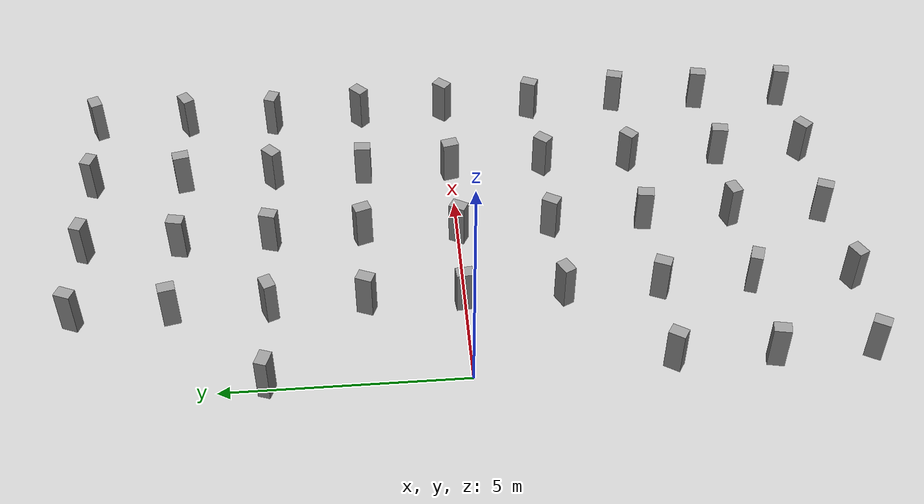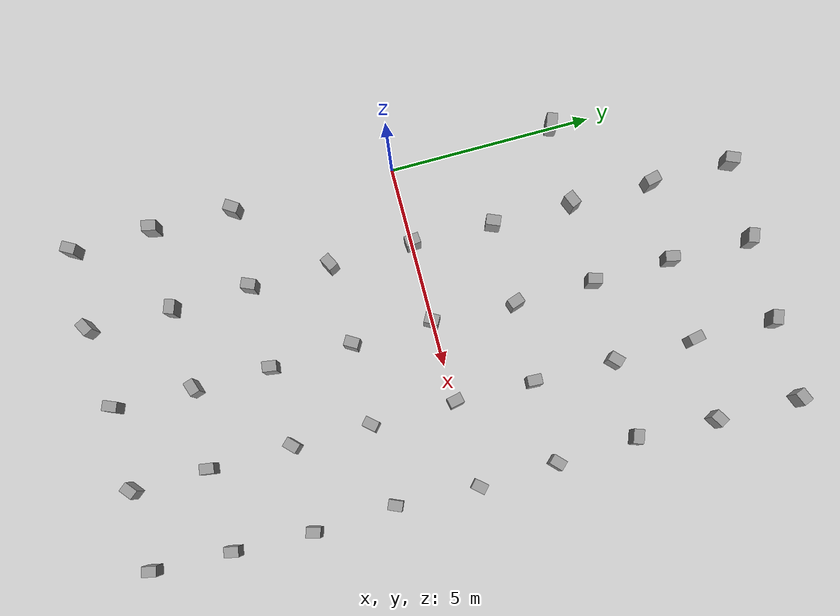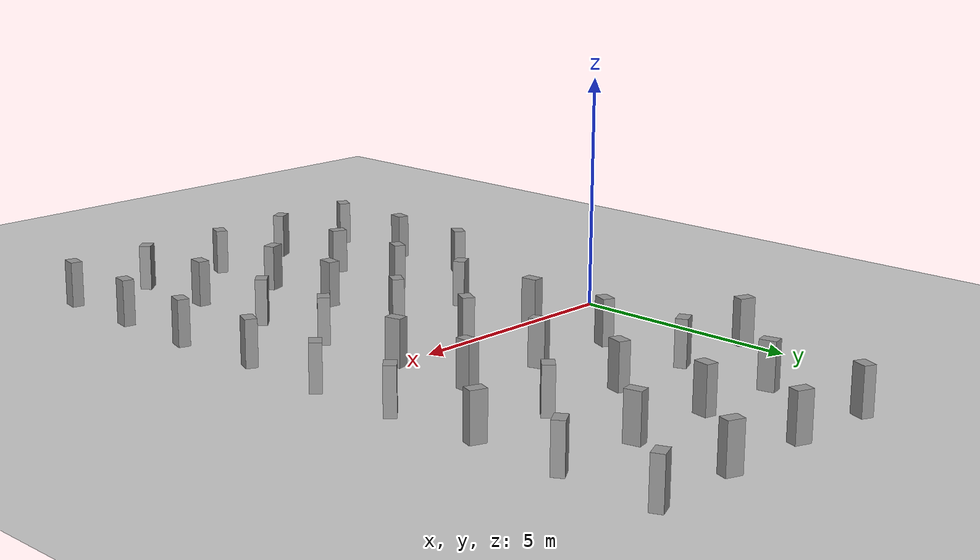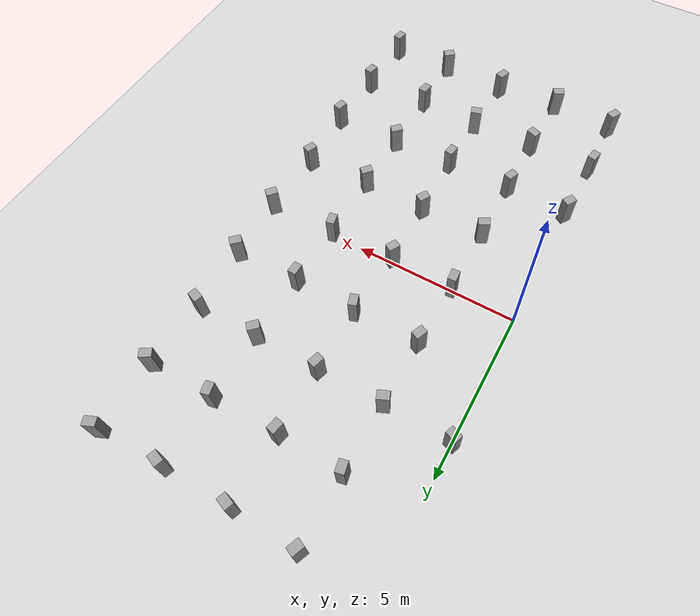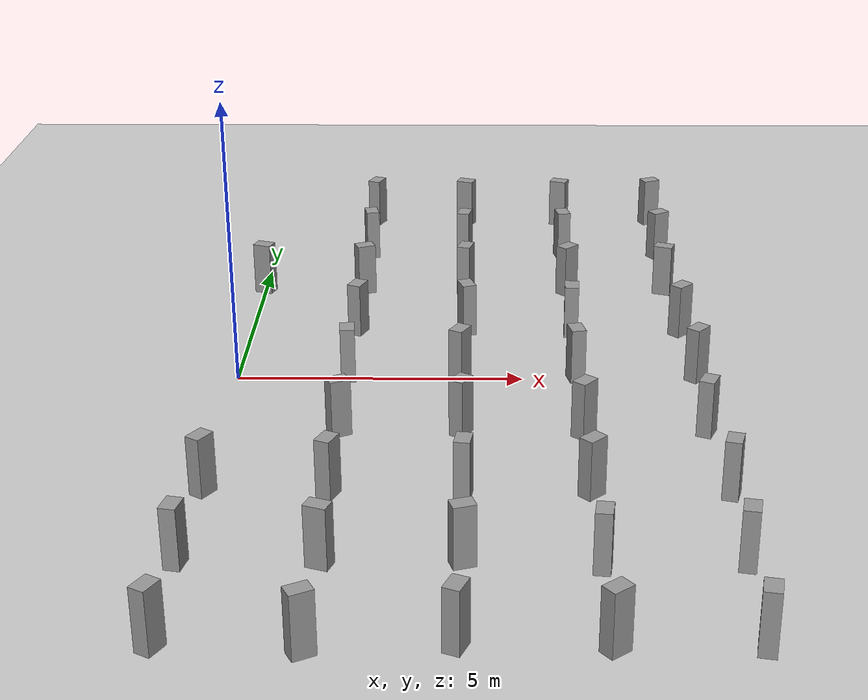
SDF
<sdf version="1.6">
 <world name="default">
  <model name="ground_plane">
   <static>1</static>
   <link name="link">
    <collision name="collision">
     <geometry><plane><normal>0 0 1</normal><size>100 100</size></plane></geometry>
     <surface><friction><ode><mu>100</mu><mu2>50</mu2></ode></friction></surface>
    </collision>
    <visual name="visual">
     <cast_shadows>0</cast_shadows>
     <geometry><plane><normal>0 0 1</normal><size>100 100</size></plane></geometry>
     <material>
      <script><uri>file://media/materials/scripts/gazebo.material</uri><name>Gazebo/Grey</name></script>
     </material>
    </visual>
   </link>
  </model>
  <model name="unit_box_0_clone_2">
   <pose>1.9498 -2.04742 0.499999 1e-06 3e-06 0.477381</pose>
   <link name="link">
    <inertial>
     <mass>1</mass>
     <inertia>
      <ixx>0.166667</ixx>
      <ixy>0</ixy>
      <ixz>0</ixz>
      <iyy>0.166667</iyy>
      <iyz>0</iyz>
      <izz>0.166667</izz>
     </inertia>
    </inertial>
    <collision name="collision"><geometry><box><size>0.350929 0.254556 1</size></box></geometry></collision>
    <visual name="visual">
     <geometry><box><size>0.350929 0.254556 1</size></box></geometry>
     <material>
      <script><name>Gazebo/Grey</name><uri>file://media/materials/scripts/gazebo.material</uri></script>
     </material>
    </visual>
   </link>
  </model>
  <model name="unit_box_0_clone_3">
   <pose>1.94354 0.021053 0.5 2e-06 1e-06 -1.48018</pose>
   <link name="link">
    <inertial>
     <mass>1</mass>
     <inertia>
      <ixx>0.166667</ixx>
      <ixy>0</ixy>
      <ixz>0</ixz>
      <iyy>0.166667</iyy>
      <iyz>0</iyz>
      <izz>0.166667</izz>
     </inertia>
    </inertial>
    <collision name="collision"><geometry><box><size>0.350929 0.254556 1</size></box></geometry></collision>
    <visual name="visual">
     <geometry><box><size>0.350929 0.254556 1</size></box></geometry>
     <material>
      <script><name>Gazebo/Grey</name><uri>file://media/materials/scripts/gazebo.material</uri></script>
     </material>
    </visual>
   </link>
  </model>
  <model name="unit_box_0_clone_4">
   <pose>1.98703 2.02419 0.5 -2e-06 1e-06 1.17595</pose>
   <link name="link">
    <inertial>
     <mass>1</mass>
     <inertia>
      <ixx>0.166667</ixx>
      <ixy>0</ixy>
      <ixz>0</ixz>
      <iyy>0.166667</iyy>
      <iyz>0</iyz>
      <izz>0.166667</izz>
     </inertia>
    </inertial>
    <collision name="collision"><geometry><box><size>0.350929 0.254556 1</size></box></geometry></collision>
    <visual name="visual">
     <geometry><box><size>0.350929 0.254556 1</size></box></geometry>
     <material>
      <script><name>Gazebo/Grey</name><uri>file://media/materials/scripts/gazebo.material</uri></script>
     </material>
    </visual>
   </link>
  </model>
  <model name="unit_box_0_clone_0_clone_0">
   <pose>3.90799 -0.017554 0.5 1e-06 -2e-06 1.06266</pose>
   <link name="link">
    <inertial>
     <mass>1</mass>
     <inertia>
      <ixx>0.166667</ixx>
      <ixy>0</ixy>
      <ixz>0</ixz>
      <iyy>0.166667</iyy>
      <iyz>0</iyz>
      <izz>0.166667</izz>
     </inertia>
    </inertial>
    <collision name="collision"><geometry><box><size>0.350929 0.254556 1</size></box></geometry></collision>
    <visual name="visual">
     <geometry><box><size>0.350929 0.254556 1</size></box></geometry>
     <material>
      <script><name>Gazebo/Grey</name><uri>file://media/materials/scripts/gazebo.material</uri></script>
     </material>
    </visual>
   </link>
  </model>
  <model name="unit_box_0_clone_0_clone_1">
   <pose>3.9473 -2.00835 0.499999 2e-06 -2e-06 1.0337</pose>
   <link name="link">
    <inertial>
     <mass>1</mass>
     <inertia>
      <ixx>0.166667</ixx>
      <ixy>0</ixy>
      <ixz>0</ixz>
      <iyy>0.166667</iyy>
      <iyz>0</iyz>
      <izz>0.166667</izz>
     </inertia>
    </inertial>
    <collision name="collision"><geometry><box><size>0.350929 0.254556 1</size></box></geometry></collision>
    <visual name="visual">
     <geometry><box><size>0.350929 0.254556 1</size></box></geometry>
     <material>
      <script><name>Gazebo/Grey</name><uri>file://media/materials/scripts/gazebo.material</uri></script>
     </material>
    </visual>
   </link>
  </model>
  <model name="unit_box_0_clone_0_clone_clone_1">
   <pose>4.00978 2.0365 0.499999 -2e-06 -2e-06 -1.24428</pose>
   <link name="link">
    <inertial>
     <mass>1</mass>
     <inertia>
      <ixx>0.166667</ixx>
      <ixy>0</ixy>
      <ixz>0</ixz>
      <iyy>0.166667</iyy>
      <iyz>0</iyz>
      <izz>0.166667</izz>
     </inertia>
    </inertial>
    <collision name="collision"><geometry><box><size>0.350929 0.254556 1</size></box></geometry></collision>
    <visual name="visual">
     <geometry><box><size>0.350929 0.254556 1</size></box></geometry>
     <material>
      <script><name>Gazebo/Grey</name><uri>file://media/materials/scripts/gazebo.material</uri></script>
     </material>
    </visual>
   </link>
  </model>
  <model name="unit_box_0_clone_0_clone_clone_4">
   <pose>0.002444 4.02781 0.5 2e-06 -1e-06 -0.343846</pose>
   <link name="link">
    <inertial>
     <mass>1</mass>
     <inertia>
      <ixx>0.166667</ixx>
      <ixy>0</ixy>
      <ixz>0</ixz>
      <iyy>0.166667</iyy>
      <iyz>0</iyz>
      <izz>0.166667</izz>
     </inertia>
    </inertial>
    <collision name="collision"><geometry><box><size>0.350929 0.254556 1</size></box></geometry></collision>
    <visual name="visual">
     <geometry><box><size>0.350929 0.254556 1</size></box></geometry>
     <material>
      <script><name>Gazebo/Grey</name><uri>file://media/materials/scripts/gazebo.material</uri></script>
     </material>
    </visual>
   </link>
  </model>
  <model name="unit_box_0_clone_0_clone_clone_5">
   <pose>1.98831 3.99609 0.499999 -2e-06 -3e-06 0.401859</pose>
   <link name="link">
    <inertial>
     <mass>1</mass>
     <inertia>
      <ixx>0.166667</ixx>
      <ixy>0</ixy>
      <ixz>0</ixz>
      <iyy>0.166667</iyy>
      <iyz>0</iyz>
      <izz>0.166667</izz>
     </inertia>
    </inertial>
    <collision name="collision"><geometry><box><size>0.350929 0.254556 1</size></box></geometry></collision>
    <visual name="visual">
     <geometry><box><size>0.350929 0.254556 1</size></box></geometry>
     <material>
      <script><name>Gazebo/Grey</name><uri>file://media/materials/scripts/gazebo.material</uri></script>
     </material>
    </visual>
   </link>
  </model>
  <model name="unit_box_0_clone_0_clone_clone_6">
   <pose>3.97808 4.00798 0.5 1e-06 -1e-06 1.28883</pose>
   <link name="link">
    <inertial>
     <mass>1</mass>
     <inertia>
      <ixx>0.166667</ixx>
      <ixy>0</ixy>
      <ixz>0</ixz>
      <iyy>0.166667</iyy>
      <iyz>0</iyz>
      <izz>0.166667</izz>
     </inertia>
    </inertial>
    <collision name="collision"><geometry><box><size>0.350929 0.254556 1</size></box></geometry></collision>
    <visual name="visual">
     <geometry><box><size>0.350929 0.254556 1</size></box></geometry>
     <material>
      <script><name>Gazebo/Grey</name><uri>file://media/materials/scripts/gazebo.material</uri></script>
     </material>
    </visual>
   </link>
  </model>
  <model name="unit_box_0_clone_0_clone_clone_9">
   <pose>0.032902 -3.98118 0.499999 2e-06 -2e-06 0.998488</pose>
   <link name="link">
    <inertial>
     <mass>1</mass>
     <inertia>
      <ixx>0.166667</ixx>
      <ixy>0</ixy>
      <ixz>0</ixz>
      <iyy>0.166667</iyy>
      <iyz>0</iyz>
      <izz>0.166667</izz>
     </inertia>
    </inertial>
    <collision name="collision"><geometry><box><size>0.350929 0.254556 1</size></box></geometry></collision>
    <visual name="visual">
     <geometry><box><size>0.350929 0.254556 1</size></box></geometry>
     <material>
      <script><name>Gazebo/Grey</name><uri>file://media/materials/scripts/gazebo.material</uri></script>
     </material>
    </visual>
   </link>
  </model>
  <model name="unit_box_0_clone_0_clone_clone_10">
   <pose>1.95385 -4.04506 0.499999 -3e-06 2e-06 1.16014</pose>
   <link name="link">
    <inertial>
     <mass>1</mass>
     <inertia>
      <ixx>0.166667</ixx>
      <ixy>0</ixy>
      <ixz>0</ixz>
      <iyy>0.166667</iyy>
      <iyz>0</iyz>
      <izz>0.166667</izz>
     </inertia>
    </inertial>
    <collision name="collision"><geometry><box><size>0.350929 0.254556 1</size></box></geometry></collision>
    <visual name="visual">
     <geometry><box><size>0.350929 0.254556 1</size></box></geometry>
     <material>
      <script><name>Gazebo/Grey</name><uri>file://media/materials/scripts/gazebo.material</uri></script>
     </material>
    </visual>
   </link>
  </model>
  <model name="unit_box_0_clone_0_clone_clone_11">
   <pose>4.00189 -4.04974 0.5 -1e-06 1e-06 1.42933</pose>
   <link name="link">
    <inertial>
     <mass>1</mass>
     <inertia>
      <ixx>0.166667</ixx>
      <ixy>0</ixy>
      <ixz>0</ixz>
      <iyy>0.166667</iyy>
      <iyz>0</iyz>
      <izz>0.166667</izz>
     </inertia>
    </inertial>
    <collision name="collision"><geometry><box><size>0.350929 0.254556 1</size></box></geometry></collision>
    <visual name="visual">
     <geometry><box><size>0.350929 0.254556 1</size></box></geometry>
     <material>
      <script><name>Gazebo/Grey</name><uri>file://media/materials/scripts/gazebo.material</uri></script>
     </material>
    </visual>
   </link>
  </model>
  <model name="unit_box_0_clone_0_clone_clone_14">
   <pose>-0.025516 -6.0059 0.499999 2e-06 -2e-06 1.37197</pose>
   <link name="link">
    <inertial>
     <mass>1</mass>
     <inertia>
      <ixx>0.166667</ixx>
      <ixy>0</ixy>
      <ixz>0</ixz>
      <iyy>0.166667</iyy>
      <iyz>0</iyz>
      <izz>0.166667</izz>
     </inertia>
    </inertial>
    <collision name="collision"><geometry><box><size>0.350929 0.254556 1</size></box></geometry></collision>
    <visual name="visual">
     <geometry><box><size>0.350929 0.254556 1</size></box></geometry>
     <material>
      <script><name>Gazebo/Grey</name><uri>file://media/materials/scripts/gazebo.material</uri></script>
     </material>
    </visual>
   </link>
  </model>
  <model name="unit_box_0_clone_0_clone_clone_15">
   <pose>2 -6 0.499999 -3e-06 2e-06 -0.343953</pose>
   <link name="link">
    <inertial>
     <mass>1</mass>
     <inertia>
      <ixx>0.166667</ixx>
      <ixy>0</ixy>
      <ixz>0</ixz>
      <iyy>0.166667</iyy>
      <iyz>0</iyz>
      <izz>0.166667</izz>
     </inertia>
    </inertial>
    <collision name="collision"><geometry><box><size>0.350929 0.254556 1</size></box></geometry></collision>
    <visual name="visual">
     <geometry><box><size>0.350929 0.254556 1</size></box></geometry>
     <material>
      <script><name>Gazebo/Grey</name><uri>file://media/materials/scripts/gazebo.material</uri></script>
     </material>
    </visual>
   </link>
  </model>
  <model name="unit_box_0_clone_0_clone_clone_16">
   <pose>4.00946 -5.96164 0.499999 -2e-06 -3e-06 0.309428</pose>
   <link name="link">
    <inertial>
     <mass>1</mass>
     <inertia>
      <ixx>0.166667</ixx>
      <ixy>0</ixy>
      <ixz>0</ixz>
      <iyy>0.166667</iyy>
      <iyz>0</iyz>
      <izz>0.166667</izz>
     </inertia>
    </inertial>
    <collision name="collision"><geometry><box><size>0.350929 0.254556 1</size></box></geometry></collision>
    <visual name="visual">
     <geometry><box><size>0.350929 0.254556 1</size></box></geometry>
     <material>
      <script><name>Gazebo/Grey</name><uri>file://media/materials/scripts/gazebo.material</uri></script>
     </material>
    </visual>
   </link>
  </model>
  <model name="unit_box_0_clone_0_clone_clone_11_clone">
   <pose>5.97269 -6.08417 0.499999 -2e-06 3e-06 1.42926</pose>
   <link name="link">
    <inertial>
     <mass>1</mass>
     <inertia>
      <ixx>0.166667</ixx>
      <ixy>0</ixy>
      <ixz>0</ixz>
      <iyy>0.166667</iyy>
      <iyz>0</iyz>
      <izz>0.166667</izz>
     </inertia>
    </inertial>
    <collision name="collision"><geometry><box><size>0.350929 0.254556 1</size></box></geometry></collision>
    <visual name="visual">
     <geometry><box><size>0.350929 0.254556 1</size></box></geometry>
     <material>
      <script><name>Gazebo/Grey</name><uri>file://media/materials/scripts/gazebo.material</uri></script>
     </material>
    </visual>
   </link>
  </model>
  <model name="unit_box_0_clone_6">
   <pose>5.9535 -4.01117 0.5 2e-06 -1e-06 0.772629</pose>
   <link name="link">
    <inertial>
     <mass>1</mass>
     <inertia>
      <ixx>0.166667</ixx>
      <ixy>0</ixy>
      <ixz>0</ixz>
      <iyy>0.166667</iyy>
      <iyz>0</iyz>
      <izz>0.166667</izz>
     </inertia>
    </inertial>
    <collision name="collision"><geometry><box><size>0.350929 0.254556 1</size></box></geometry></collision>
    <visual name="visual">
     <geometry><box><size>0.350929 0.254556 1</size></box></geometry>
     <material>
      <script><name>Gazebo/Grey</name><uri>file://media/materials/scripts/gazebo.material</uri></script>
     </material>
    </visual>
   </link>
  </model>
  <model name="unit_box_0_clone_0_clone_clone_8_clone">
   <pose>5.94938 -2.06677 0.499999 -1e-06 -3e-06 0.856219</pose>
   <link name="link">
    <inertial>
     <mass>1</mass>
     <inertia>
      <ixx>0.166667</ixx>
      <ixy>0</ixy>
      <ixz>0</ixz>
      <iyy>0.166667</iyy>
      <iyz>0</iyz>
      <izz>0.166667</izz>
     </inertia>
    </inertial>
    <collision name="collision"><geometry><box><size>0.350929 0.254556 1</size></box></geometry></collision>
    <visual name="visual">
     <geometry><box><size>0.350929 0.254556 1</size></box></geometry>
     <material>
      <script><name>Gazebo/Grey</name><uri>file://media/materials/scripts/gazebo.material</uri></script>
     </material>
    </visual>
   </link>
  </model>
  <model name="unit_box_0_clone_1_clone">
   <pose>5.93099 0.022737 0.5 0 2e-06 -1.35836</pose>
   <link name="link">
    <inertial>
     <mass>1</mass>
     <inertia>
      <ixx>0.166667</ixx>
      <ixy>0</ixy>
      <ixz>0</ixz>
      <iyy>0.166667</iyy>
      <iyz>0</iyz>
      <izz>0.166667</izz>
     </inertia>
    </inertial>
    <collision name="collision"><geometry><box><size>0.350929 0.254556 1</size></box></geometry></collision>
    <visual name="visual">
     <geometry><box><size>0.350929 0.254556 1</size></box></geometry>
     <material>
      <script><name>Gazebo/Grey</name><uri>file://media/materials/scripts/gazebo.material</uri></script>
     </material>
    </visual>
   </link>
  </model>
  <model name="unit_box_0_clone_clone">
   <pose>5.95328 1.96844 0.5 1e-06 -1e-06 -1.61415</pose>
   <link name="link">
    <inertial>
     <mass>1</mass>
     <inertia>
      <ixx>0.166667</ixx>
      <ixy>0</ixy>
      <ixz>0</ixz>
      <iyy>0.166667</iyy>
      <iyz>0</iyz>
      <izz>0.166667</izz>
     </inertia>
    </inertial>
    <collision name="collision"><geometry><box><size>0.350929 0.254556 1</size></box></geometry></collision>
    <visual name="visual">
     <geometry><box><size>0.350929 0.254556 1</size></box></geometry>
     <material>
      <script><name>Gazebo/Grey</name><uri>file://media/materials/scripts/gazebo.material</uri></script>
     </material>
    </visual>
   </link>
  </model>
  <model name="unit_box_0_clone_7">
   <pose>5.97323 3.98432 0.5 0 -2e-06 0.772538</pose>
   <link name="link">
    <inertial>
     <mass>1</mass>
     <inertia>
      <ixx>0.166667</ixx>
      <ixy>0</ixy>
      <ixz>0</ixz>
      <iyy>0.166667</iyy>
      <iyz>0</iyz>
      <izz>0.166667</izz>
     </inertia>
    </inertial>
    <collision name="collision"><geometry><box><size>0.350929 0.254556 1</size></box></geometry></collision>
    <visual name="visual">
     <geometry><box><size>0.350929 0.254556 1</size></box></geometry>
     <material>
      <script><name>Gazebo/Grey</name><uri>file://media/materials/scripts/gazebo.material</uri></script>
     </material>
    </visual>
   </link>
  </model>
  <model name="unit_box_0_clone_1_clone_0">
   <pose>5.97038 5.96817 0.5 -0 2e-06 -1.35827</pose>
   <link name="link">
    <inertial>
     <mass>1</mass>
     <inertia>
      <ixx>0.166667</ixx>
      <ixy>0</ixy>
      <ixz>0</ixz>
      <iyy>0.166667</iyy>
      <iyz>0</iyz>
      <izz>0.166667</izz>
     </inertia>
    </inertial>
    <collision name="collision"><geometry><box><size>0.350929 0.254556 1</size></box></geometry></collision>
    <visual name="visual">
     <geometry><box><size>0.350929 0.254556 1</size></box></geometry>
     <material>
      <script><name>Gazebo/Grey</name><uri>file://media/materials/scripts/gazebo.material</uri></script>
     </material>
    </visual>
   </link>
  </model>
  <model name="unit_box_0_clone_5_clone">
   <pose>3.93752 5.94743 0.499999 -2e-06 2e-06 1.37174</pose>
   <link name="link">
    <inertial>
     <mass>1</mass>
     <inertia>
      <ixx>0.166667</ixx>
      <ixy>0</ixy>
      <ixz>0</ixz>
      <iyy>0.166667</iyy>
      <iyz>0</iyz>
      <izz>0.166667</izz>
     </inertia>
    </inertial>
    <collision name="collision"><geometry><box><size>0.350929 0.254556 1</size></box></geometry></collision>
    <visual name="visual">
     <geometry><box><size>0.350929 0.254556 1</size></box></geometry>
     <material>
      <script><name>Gazebo/Grey</name><uri>file://media/materials/scripts/gazebo.material</uri></script>
     </material>
    </visual>
   </link>
  </model>
  <model name="unit_box_0_clone_1_clone_1">
   <pose>2 6 0.5 1e-06 1e-06 -1.35824</pose>
   <link name="link">
    <inertial>
     <mass>1</mass>
     <inertia>
      <ixx>0.166667</ixx>
      <ixy>0</ixy>
      <ixz>0</ixz>
      <iyy>0.166667</iyy>
      <iyz>0</iyz>
      <izz>0.166667</izz>
     </inertia>
    </inertial>
    <collision name="collision"><geometry><box><size>0.350929 0.254556 1</size></box></geometry></collision>
    <visual name="visual">
     <geometry><box><size>0.350929 0.254556 1</size></box></geometry>
     <material>
      <script><name>Gazebo/Grey</name><uri>file://media/materials/scripts/gazebo.material</uri></script>
     </material>
    </visual>
   </link>
  </model>
  <model name="unit_box_0_clone_4_clone_0">
   <pose>2 8 0.5 -2e-06 1e-06 1.17598</pose>
   <link name="link">
    <inertial>
     <mass>1</mass>
     <inertia>
      <ixx>0.166667</ixx>
      <ixy>0</ixy>
      <ixz>0</ixz>
      <iyy>0.166667</iyy>
      <iyz>0</iyz>
      <izz>0.166667</izz>
     </inertia>
    </inertial>
    <collision name="collision"><geometry><box><size>0.350929 0.254556 1</size></box></geometry></collision>
    <visual name="visual">
     <geometry><box><size>0.350929 0.254556 1</size></box></geometry>
     <material>
      <script><name>Gazebo/Grey</name><uri>file://media/materials/scripts/gazebo.material</uri></script>
     </material>
    </visual>
   </link>
  </model>
  <model name="unit_box_0_clone_0_clone_clone_18">
   <pose>3.95488 7.96357 0.499999 -2e-06 2e-06 -0.343898</pose>
   <link name="link">
    <inertial>
     <mass>1</mass>
     <inertia>
      <ixx>0.166667</ixx>
      <ixy>0</ixy>
      <ixz>0</ixz>
      <iyy>0.166667</iyy>
      <iyz>0</iyz>
      <izz>0.166667</izz>
     </inertia>
    </inertial>
    <collision name="collision"><geometry><box><size>0.350929 0.254556 1</size></box></geometry></collision>
    <visual name="visual">
     <geometry><box><size>0.350929 0.254556 1</size></box></geometry>
     <material>
      <script><name>Gazebo/Grey</name><uri>file://media/materials/scripts/gazebo.material</uri></script>
     </material>
    </visual>
   </link>
  </model>
  <model name="unit_box_0_clone_0_clone_clone_4_clone_0">
   <pose>5.99782 7.97549 0.5 -2e-06 1e-06 -0.343898</pose>
   <link name="link">
    <inertial>
     <mass>1</mass>
     <inertia>
      <ixx>0.166667</ixx>
      <ixy>0</ixy>
      <ixz>0</ixz>
      <iyy>0.166667</iyy>
      <iyz>0</iyz>
      <izz>0.166667</izz>
     </inertia>
    </inertial>
    <collision name="collision"><geometry><box><size>0.350929 0.254556 1</size></box></geometry></collision>
    <visual name="visual">
     <geometry><box><size>0.350929 0.254556 1</size></box></geometry>
     <material>
      <script><name>Gazebo/Grey</name><uri>file://media/materials/scripts/gazebo.material</uri></script>
     </material>
    </visual>
   </link>
  </model>
  <model name="unit_box_0_clone_0_clone_clone_5_clone_clone_0">
   <pose>7.98714 8.04657 0.499999 2e-06 2e-06 0.401919</pose>
   <link name="link">
    <inertial>
     <mass>1</mass>
     <inertia>
      <ixx>0.166667</ixx>
      <ixy>0</ixy>
      <ixz>0</ixz>
      <iyy>0.166667</iyy>
      <iyz>0</iyz>
      <izz>0.166667</izz>
     </inertia>
    </inertial>
    <collision name="collision"><geometry><box><size>0.350929 0.254556 1</size></box></geometry></collision>
    <visual name="visual">
     <geometry><box><size>0.350929 0.254556 1</size></box></geometry>
     <material>
      <script><name>Gazebo/Grey</name><uri>file://media/materials/scripts/gazebo.material</uri></script>
     </material>
    </visual>
   </link>
  </model>
  <model name="unit_box_0_clone_0_clone_clone_3_clone">
   <pose>7.966 5.9773 0.499999 3e-06 2e-06 0.554879</pose>
   <link name="link">
    <inertial>
     <mass>1</mass>
     <inertia>
      <ixx>0.166667</ixx>
      <ixy>0</ixy>
      <ixz>0</ixz>
      <iyy>0.166667</iyy>
      <iyz>0</iyz>
      <izz>0.166667</izz>
     </inertia>
    </inertial>
    <collision name="collision"><geometry><box><size>0.350929 0.254556 1</size></box></geometry></collision>
    <visual name="visual">
     <geometry><box><size>0.350929 0.254556 1</size></box></geometry>
     <material>
      <script><name>Gazebo/Grey</name><uri>file://media/materials/scripts/gazebo.material</uri></script>
     </material>
    </visual>
   </link>
  </model>
  <model name="unit_box_0_clone_0_clone_clone_4_clone_1">
   <pose>7.87955 3.99891 0.499999 2e-06 -2e-06 -0.343898</pose>
   <link name="link">
    <inertial>
     <mass>1</mass>
     <inertia>
      <ixx>0.166667</ixx>
      <ixy>0</ixy>
      <ixz>0</ixz>
      <iyy>0.166667</iyy>
      <iyz>0</iyz>
      <izz>0.166667</izz>
     </inertia>
    </inertial>
    <collision name="collision"><geometry><box><size>0.350929 0.254556 1</size></box></geometry></collision>
    <visual name="visual">
     <geometry><box><size>0.350929 0.254556 1</size></box></geometry>
     <material>
      <script><name>Gazebo/Grey</name><uri>file://media/materials/scripts/gazebo.material</uri></script>
     </material>
    </visual>
   </link>
  </model>
  <model name="unit_box_0_clone_9">
   <pose>7.9798 1.99443 0.5 -1e-06 1e-06 0.772498</pose>
   <link name="link">
    <inertial>
     <mass>1</mass>
     <inertia>
      <ixx>0.166667</ixx>
      <ixy>0</ixy>
      <ixz>0</ixz>
      <iyy>0.166667</iyy>
      <iyz>0</iyz>
      <izz>0.166667</izz>
     </inertia>
    </inertial>
    <collision name="collision"><geometry><box><size>0.350929 0.254556 1</size></box></geometry></collision>
    <visual name="visual">
     <geometry><box><size>0.350929 0.254556 1</size></box></geometry>
     <material>
      <script><name>Gazebo/Grey</name><uri>file://media/materials/scripts/gazebo.material</uri></script>
     </material>
    </visual>
   </link>
  </model>
  <model name="unit_box_0_clone_0_clone_clone_8_clone_2">
   <pose>8.04719 0.051568 0.499999 1e-06 -3e-06 0.856123</pose>
   <link name="link">
    <inertial>
     <mass>1</mass>
     <inertia>
      <ixx>0.166667</ixx>
      <ixy>0</ixy>
      <ixz>0</ixz>
      <iyy>0.166667</iyy>
      <iyz>0</iyz>
      <izz>0.166667</izz>
     </inertia>
    </inertial>
    <collision name="collision"><geometry><box><size>0.350929 0.254556 1</size></box></geometry></collision>
    <visual name="visual">
     <geometry><box><size>0.350929 0.254556 1</size></box></geometry>
     <material>
      <script><name>Gazebo/Grey</name><uri>file://media/materials/scripts/gazebo.material</uri></script>
     </material>
    </visual>
   </link>
  </model>
  <model name="unit_box_0_clone_0_clone_clone_10_clone_clone">
   <pose>7.96284 -1.99279 0.499999 -3e-06 -2e-06 1.16004</pose>
   <link name="link">
    <inertial>
     <mass>1</mass>
     <inertia>
      <ixx>0.166667</ixx>
      <ixy>0</ixy>
      <ixz>0</ixz>
      <iyy>0.166667</iyy>
      <iyz>0</iyz>
      <izz>0.166667</izz>
     </inertia>
    </inertial>
    <collision name="collision"><geometry><box><size>0.350929 0.254556 1</size></box></geometry></collision>
    <visual name="visual">
     <geometry><box><size>0.350929 0.254556 1</size></box></geometry>
     <material>
      <script><name>Gazebo/Grey</name><uri>file://media/materials/scripts/gazebo.material</uri></script>
     </material>
    </visual>
   </link>
  </model>
  <model name="unit_box_0_clone_0_clone_clone_6_clone">
   <pose>8.07355 -4.02395 0.499999 -1e-06 3e-06 1.28876</pose>
   <link name="link">
    <inertial>
     <mass>1</mass>
     <inertia>
      <ixx>0.166667</ixx>
      <ixy>0</ixy>
      <ixz>0</ixz>
      <iyy>0.166667</iyy>
      <iyz>0</iyz>
      <izz>0.166667</izz>
     </inertia>
    </inertial>
    <collision name="collision"><geometry><box><size>0.350929 0.254556 1</size></box></geometry></collision>
    <visual name="visual">
     <geometry><box><size>0.350929 0.254556 1</size></box></geometry>
     <material>
      <script><name>Gazebo/Grey</name><uri>file://media/materials/scripts/gazebo.material</uri></script>
     </material>
    </visual>
   </link>
  </model>
  <model name="unit_box_0_clone_5_clone_1">
   <pose>8.01703 -6.00424 0.5 0 -2e-06 1.37177</pose>
   <link name="link">
    <inertial>
     <mass>1</mass>
     <inertia>
      <ixx>0.166667</ixx>
      <ixy>0</ixy>
      <ixz>0</ixz>
      <iyy>0.166667</iyy>
      <iyz>0</iyz>
      <izz>0.166667</izz>
     </inertia>
    </inertial>
    <collision name="collision"><geometry><box><size>0.350929 0.254556 1</size></box></geometry></collision>
    <visual name="visual">
     <geometry><box><size>0.350929 0.254556 1</size></box></geometry>
     <material>
      <script><name>Gazebo/Grey</name><uri>file://media/materials/scripts/gazebo.material</uri></script>
     </material>
    </visual>
   </link>
  </model>
  <model name="unit_box_0_clone_5_clone_clone">
   <pose>7.96092 -7.98551 0.499999 2e-06 -2e-06 1.37193</pose>
   <link name="link">
    <inertial>
     <mass>1</mass>
     <inertia>
      <ixx>0.166667</ixx>
      <ixy>0</ixy>
      <ixz>0</ixz>
      <iyy>0.166667</iyy>
      <iyz>0</iyz>
      <izz>0.166667</izz>
     </inertia>
    </inertial>
    <collision name="collision"><geometry><box><size>0.350929 0.254556 1</size></box></geometry></collision>
    <visual name="visual">
     <geometry><box><size>0.350929 0.254556 1</size></box></geometry>
     <material>
      <script><name>Gazebo/Grey</name><uri>file://media/materials/scripts/gazebo.material</uri></script>
     </material>
    </visual>
   </link>
  </model>
  <model name="unit_box_0_clone_0_clone_clone_7_clone_0">
   <pose>6 -8 0.499999 1e-06 3e-06 0.673978</pose>
   <link name="link">
    <inertial>
     <mass>1</mass>
     <inertia>
      <ixx>0.166667</ixx>
      <ixy>0</ixy>
      <ixz>0</ixz>
      <iyy>0.166667</iyy>
      <iyz>0</iyz>
      <izz>0.166667</izz>
     </inertia>
    </inertial>
    <collision name="collision"><geometry><box><size>0.350929 0.254556 1</size></box></geometry></collision>
    <visual name="visual">
     <geometry><box><size>0.350929 0.254556 1</size></box></geometry>
     <material>
      <script><name>Gazebo/Grey</name><uri>file://media/materials/scripts/gazebo.material</uri></script>
     </material>
    </visual>
   </link>
  </model>
  <model name="unit_box_0_clone_4_clone_clone">
   <pose>3.94557 -7.95059 0.5 -2e-06 1e-06 1.176</pose>
   <link name="link">
    <inertial>
     <mass>1</mass>
     <inertia>
      <ixx>0.166667</ixx>
      <ixy>0</ixy>
      <ixz>0</ixz>
      <iyy>0.166667</iyy>
      <iyz>0</iyz>
      <izz>0.166667</izz>
     </inertia>
    </inertial>
    <collision name="collision"><geometry><box><size>0.350929 0.254556 1</size></box></geometry></collision>
    <visual name="visual">
     <geometry><box><size>0.350929 0.254556 1</size></box></geometry>
     <material>
      <script><name>Gazebo/Grey</name><uri>file://media/materials/scripts/gazebo.material</uri></script>
     </material>
    </visual>
   </link>
  </model>
  <model name="unit_box_0_clone_0_clone_0_clone">
   <pose>1e-06 -8 0.499999 -1e-06 3e-06 1.06262</pose>
   <link name="link">
    <inertial>
     <mass>1</mass>
     <inertia>
      <ixx>0.166667</ixx>
      <ixy>0</ixy>
      <ixz>0</ixz>
      <iyy>0.166667</iyy>
      <iyz>0</iyz>
      <izz>0.166667</izz>
     </inertia>
    </inertial>
    <collision name="collision"><geometry><box><size>0.350929 0.254556 1</size></box></geometry></collision>
    <visual name="visual">
     <geometry><box><size>0.350929 0.254556 1</size></box></geometry>
     <material>
      <script><name>Gazebo/Grey</name><uri>file://media/materials/scripts/gazebo.material</uri></script>
     </material>
    </visual>
   </link>
  </model>
  <model name="unit_box_0_clone_2_clone_0">
   <pose>1.95493 -8.09468 0.499999 2e-06 3e-06 0.477387</pose>
   <link name="link">
    <inertial>
     <mass>1</mass>
     <inertia>
      <ixx>0.166667</ixx>
      <ixy>0</ixy>
      <ixz>0</ixz>
      <iyy>0.166667</iyy>
      <iyz>0</iyz>
      <izz>0.166667</izz>
     </inertia>
    </inertial>
    <collision name="collision"><geometry><box><size>0.350929 0.254556 1</size></box></geometry></collision>
    <visual name="visual">
     <geometry><box><size>0.350929 0.254556 1</size></box></geometry>
     <material>
      <script><name>Gazebo/Grey</name><uri>file://media/materials/scripts/gazebo.material</uri></script>
     </material>
    </visual>
   </link>
  </model>
 </world>
</sdf>
